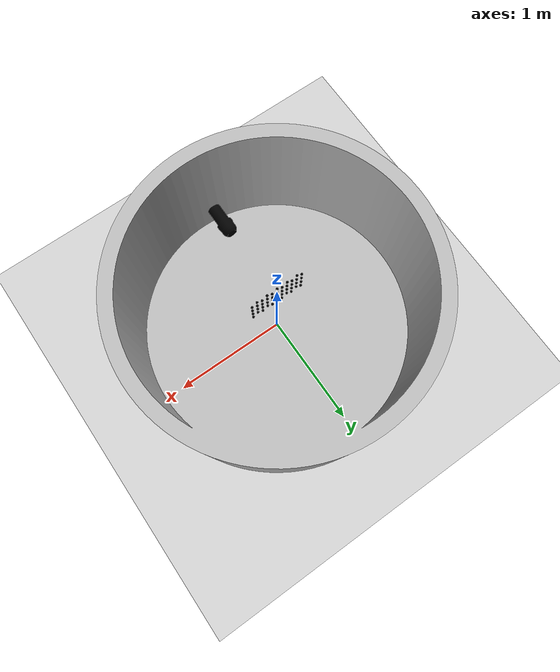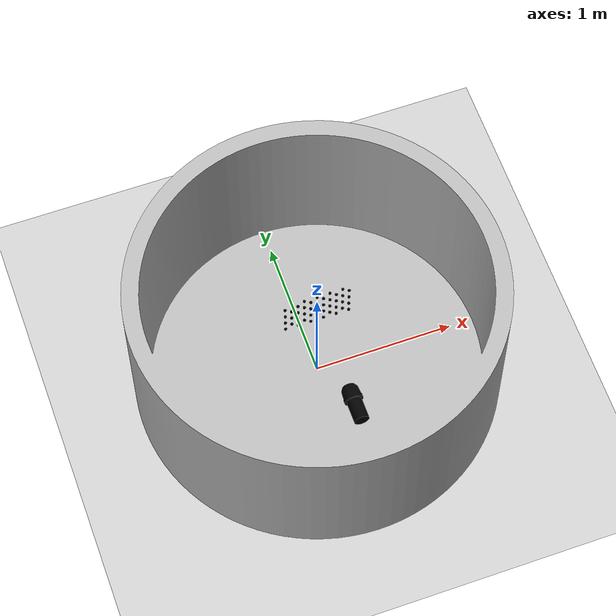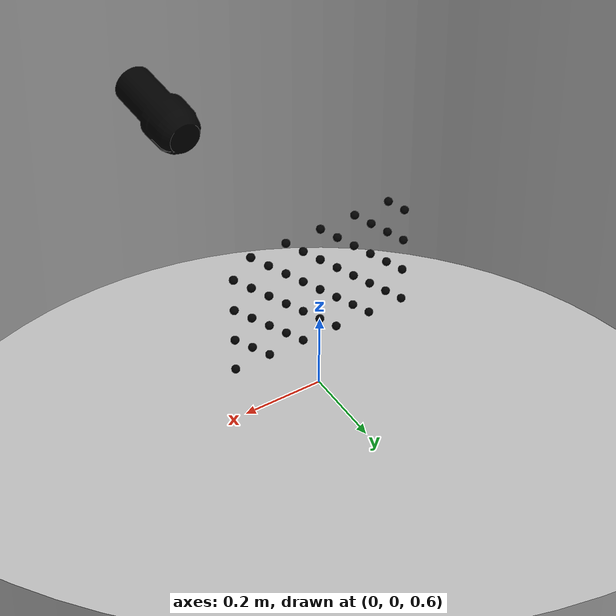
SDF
<?xml version="1.0" ?>
<sdf version="1.6">
  <world name="default">
    <include>
      <uri>model://ground_plane</uri>
    </include>
    <include>
      <uri>model://sun</uri>
    </include>

    <gui>
      <camera name='user_camera'>
        <pose>2.52 -2.65 3.73 0 0.66 2.42</pose>
      </camera>
    </gui>

    <!-- basement tank -->
    <include>
      <uri>model://cylinder_sonar_tank</uri>
      <name>cylinder_sonar_tank</name>
      <pose>0 0 0 0 0 0</pose>
      <static>true</static>
    </include>

    <!-- vertical cylinder target -->

    <!-- horizontal cylinder target -->

    <!-- simple plate target -->
    <!-- Assume that the plate is at the same z position as the sonar -->
    <!-- sonar is at 12" below water surface -->

    <!-- plate model (designed using SolidWorks) -->
    <!-- Plate size : 600 mm x 450 mm, origin at left bottom corner-->
    <!-- Assume that the plate is at the same z position as the sonar -->
    <!-- sonar is at 12" below water surface where the water is ~48" deep -->

    <include>
      <uri>model://plate_holes</uri>
      <name>plate_model</name>
      <pose>0 0 0.9144 0 0 0</pose>
      <static>true</static>
    </include>

    <!-- Oculus m1200d -->
    <!-- Sonar placed at 12" below water surface, 20" from the sonar tank wall -->
    <!-- zero roll and pitch, the water is ~48" deep -->
    <include>
      <uri>model://oculus_m1200d_nps_multibeam_HF</uri>
      <name>oculus_m1200d</name>
      <pose>0 -0.6604 0.9144 0 0 1.5709</pose>
      <static>true</static>
    </include>

  </world>
</sdf>

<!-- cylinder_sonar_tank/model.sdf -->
<sdf version="1.6">
  <model name="cylinder_sonar_tank">
    <link name="link">
      <inertial>
        <pose>0 0 0 0 0 0</pose>
        <mass>1000.0</mass>
        <inertia>
          <ixx>0.083</ixx>
          <ixy>0.0</ixy>
          <ixz>0.0</ixz>
          <iyy>0.083</iyy>
          <iyz>0.0</iyz>
          <izz>0.083</izz>
        </inertia>
      </inertial>
      <collision name="collision">
        <geometry>
          <mesh>
            <uri>model://cylinder_sonar_tank/meshes/cylinder_sonar_tank.stl</uri>
            <!-- inner diameter of 92". The water is ~48" deep -->
            <scale>1.1684 1.1684 0.6096</scale>
          </mesh>
        </geometry>
      </collision>
      <visual name="visual">
        <geometry>
          <mesh>
            <uri>model://cylinder_sonar_tank/meshes/COLLISION_cylinder_sonar_tank.stl</uri>
            <!-- inner diameter of 92". The water is ~48" deep -->
            <scale>1.1684 1.1684 0.6096</scale>
          </mesh>
        </geometry>
      </visual>
    </link>
  </model>
</sdf>

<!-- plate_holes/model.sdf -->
<sdf version="1.6">
  <model name="plate_holes">

    <link name="A1">
      <pose>-0.18 0 0.1575 0 0 0</pose>
      <collision name="collision"><geometry><sphere><radius>0.01</radius></sphere></geometry></collision>
      <visual name="visual"><geometry><sphere><radius>0.01</radius></sphere></geometry>  <material><ambient>0 0 0 1</ambient><diffuse>0 0 0 1</diffuse><specular>0 0 0 0</specular><emissive>1.0 0.2 0.2 1</emissive></material>
      </visual>
    </link>

    <link name="A2">
      <pose>-0.09 0 0.1575 0 0 0</pose>
      <collision name="collision"><geometry><sphere><radius>0.01</radius></sphere></geometry></collision>
      <visual name="visual"><geometry><sphere><radius>0.01</radius></sphere></geometry>  <material><ambient>0 0 0 1</ambient><diffuse>0 0 0 1</diffuse><specular>0 0 0 0</specular><emissive>1.0 0.2 0.2 1</emissive></material>
      </visual>
    </link>

    <link name="A3">
      <pose>0 0 0.1575 0 0 0</pose>
      <collision name="collision"><geometry><sphere><radius>0.01</radius></sphere></geometry></collision>
      <visual name="visual"><geometry><sphere><radius>0.01</radius></sphere></geometry>  <material><ambient>0 0 0 1</ambient><diffuse>0 0 0 1</diffuse><specular>0 0 0 0</specular><emissive>1.0 0.2 0.2 1</emissive></material>
      </visual>
    </link>

    <link name="A4">
      <pose>0.09 0 0.1575 0 0 0</pose>
      <collision name="collision"><geometry><sphere><radius>0.01</radius></sphere></geometry></collision>
      <visual name="visual"><geometry><sphere><radius>0.01</radius></sphere></geometry>  <material><ambient>0 0 0 1</ambient><diffuse>0 0 0 1</diffuse><specular>0 0 0 0</specular><emissive>1.0 0.2 0.2 1</emissive></material>
      </visual>
    </link>

    <link name="A5">
      <pose>0.18 0 0.1575 0 0 0</pose>
      <collision name="collision"><geometry><sphere><radius>0.01</radius></sphere></geometry></collision>
      <visual name="visual"><geometry><sphere><radius>0.01</radius></sphere></geometry>  <material><ambient>0 0 0 1</ambient><diffuse>0 0 0 1</diffuse><specular>0 0 0 0</specular><emissive>1.0 0.2 0.2 1</emissive></material>
      </visual>
    </link>

    <link name="B1">
      <pose>-0.225 0 0.1125 0 0 0</pose>
      <collision name="collision"><geometry><sphere><radius>0.01</radius></sphere></geometry></collision>
      <visual name="visual"><geometry><sphere><radius>0.01</radius></sphere></geometry>  <material><ambient>0 0 0 1</ambient><diffuse>0 0 0 1</diffuse><specular>0 0 0 0</specular><emissive>1.0 0.2 0.2 1</emissive></material>
      </visual>
    </link>

    <link name="B2">
      <pose>-0.135 0 0.1125 0 0 0</pose>
      <collision name="collision"><geometry><sphere><radius>0.01</radius></sphere></geometry></collision>
      <visual name="visual"><geometry><sphere><radius>0.01</radius></sphere></geometry>  <material><ambient>0 0 0 1</ambient><diffuse>0 0 0 1</diffuse><specular>0 0 0 0</specular><emissive>1.0 0.2 0.2 1</emissive></material>
      </visual>
    </link>

    <link name="B3">
      <pose>-0.045 0 0.1125 0 0 0</pose>
      <collision name="collision"><geometry><sphere><radius>0.01</radius></sphere></geometry></collision>
      <visual name="visual"><geometry><sphere><radius>0.01</radius></sphere></geometry>  <material><ambient>0 0 0 1</ambient><diffuse>0 0 0 1</diffuse><specular>0 0 0 0</specular><emissive>1.0 0.2 0.2 1</emissive></material>
      </visual>
    </link>

    <link name="B4">
      <pose>0.045 0 0.1125 0 0 0</pose>
      <collision name="collision"><geometry><sphere><radius>0.01</radius></sphere></geometry></collision>
      <visual name="visual"><geometry><sphere><radius>0.01</radius></sphere></geometry>  <material><ambient>0 0 0 1</ambient><diffuse>0 0 0 1</diffuse><specular>0 0 0 0</specular><emissive>1.0 0.2 0.2 1</emissive></material>
      </visual>
    </link>

    <link name="B5">
      <pose>0.135 0 0.1125 0 0 0</pose>
      <collision name="collision"><geometry><sphere><radius>0.01</radius></sphere></geometry></collision>
      <visual name="visual"><geometry><sphere><radius>0.01</radius></sphere></geometry>  <material><ambient>0 0 0 1</ambient><diffuse>0 0 0 1</diffuse><specular>0 0 0 0</specular><emissive>1.0 0.2 0.2 1</emissive></material>
      </visual>
    </link>

    <link name="B6">
      <pose>0.225 0 0.1125 0 0 0</pose>
      <collision name="collision"><geometry><sphere><radius>0.01</radius></sphere></geometry></collision>
      <visual name="visual"><geometry><sphere><radius>0.01</radius></sphere></geometry>  <material><ambient>0 0 0 1</ambient><diffuse>0 0 0 1</diffuse><specular>0 0 0 0</specular><emissive>1.0 0.2 0.2 1</emissive></material>
      </visual>
    </link>

    <link name="C1">
      <pose>-0.18 0 0.0675 0 0 0</pose>
      <collision name="collision"><geometry><sphere><radius>0.01</radius></sphere></geometry></collision>
      <visual name="visual"><geometry><sphere><radius>0.01</radius></sphere></geometry>  <material><ambient>0 0 0 1</ambient><diffuse>0 0 0 1</diffuse><specular>0 0 0 0</specular><emissive>1.0 0.2 0.2 1</emissive></material>
      </visual>
    </link>

    <link name="C2">
      <pose>-0.09 0 0.0675 0 0 0</pose>
      <collision name="collision"><geometry><sphere><radius>0.01</radius></sphere></geometry></collision>
      <visual name="visual"><geometry><sphere><radius>0.01</radius></sphere></geometry>  <material><ambient>0 0 0 1</ambient><diffuse>0 0 0 1</diffuse><specular>0 0 0 0</specular><emissive>1.0 0.2 0.2 1</emissive></material>
      </visual>
    </link>

    <link name="C3">
      <pose>0 0 0.0675 0 0 0</pose>
      <collision name="collision"><geometry><sphere><radius>0.01</radius></sphere></geometry></collision>
      <visual name="visual"><geometry><sphere><radius>0.01</radius></sphere></geometry>  <material><ambient>0 0 0 1</ambient><diffuse>0 0 0 1</diffuse><specular>0 0 0 0</specular><emissive>1.0 0.2 0.2 1</emissive></material>
      </visual>
    </link>

    <link name="C4">
      <pose>0.09 0 0.0675 0 0 0</pose>
      <collision name="collision"><geometry><sphere><radius>0.01</radius></sphere></geometry></collision>
      <visual name="visual"><geometry><sphere><radius>0.01</radius></sphere></geometry>  <material><ambient>0 0 0 1</ambient><diffuse>0 0 0 1</diffuse><specular>0 0 0 0</specular><emissive>1.0 0.2 0.2 1</emissive></material>
      </visual>
    </link>

    <link name="C5">
      <pose>0.18 0 0.0675 0 0 0</pose>
      <collision name="collision"><geometry><sphere><radius>0.01</radius></sphere></geometry></collision>
      <visual name="visual"><geometry><sphere><radius>0.01</radius></sphere></geometry>  <material><ambient>0 0 0 1</ambient><diffuse>0 0 0 1</diffuse><specular>0 0 0 0</specular><emissive>1.0 0.2 0.2 1</emissive></material>
      </visual>
    </link>

    <link name="D1">
      <pose>-0.225 0 0.0225 0 0 0</pose>
      <collision name="collision"><geometry><sphere><radius>0.01</radius></sphere></geometry></collision>
      <visual name="visual"><geometry><sphere><radius>0.01</radius></sphere></geometry>  <material><ambient>0 0 0 1</ambient><diffuse>0 0 0 1</diffuse><specular>0 0 0 0</specular><emissive>1.0 0.2 0.2 1</emissive></material>
      </visual>
    </link>

    <link name="D2">
      <pose>-0.135 0 0.0225 0 0 0</pose>
      <collision name="collision"><geometry><sphere><radius>0.01</radius></sphere></geometry></collision>
      <visual name="visual"><geometry><sphere><radius>0.01</radius></sphere></geometry>  <material><ambient>0 0 0 1</ambient><diffuse>0 0 0 1</diffuse><specular>0 0 0 0</specular><emissive>1.0 0.2 0.2 1</emissive></material>
      </visual>
    </link>

    <link name="D3">
      <pose>-0.045 0 0.0225 0 0 0</pose>
      <collision name="collision"><geometry><sphere><radius>0.01</radius></sphere></geometry></collision>
      <visual name="visual"><geometry><sphere><radius>0.01</radius></sphere></geometry>  <material><ambient>0 0 0 1</ambient><diffuse>0 0 0 1</diffuse><specular>0 0 0 0</specular><emissive>1.0 0.2 0.2 1</emissive></material>
      </visual>
    </link>

    <link name="D4">
      <pose>0.045 0 0.0225 0 0 0</pose>
      <collision name="collision"><geometry><sphere><radius>0.01</radius></sphere></geometry></collision>
      <visual name="visual"><geometry><sphere><radius>0.01</radius></sphere></geometry>  <material><ambient>0 0 0 1</ambient><diffuse>0 0 0 1</diffuse><specular>0 0 0 0</specular><emissive>1.0 0.2 0.2 1</emissive></material>
      </visual>
    </link>

    <link name="D5">
      <pose>0.135 0 0.0225 0 0 0</pose>
      <collision name="collision"><geometry><sphere><radius>0.01</radius></sphere></geometry></collision>
      <visual name="visual"><geometry><sphere><radius>0.01</radius></sphere></geometry>  <material><ambient>0 0 0 1</ambient><diffuse>0 0 0 1</diffuse><specular>0 0 0 0</specular><emissive>1.0 0.2 0.2 1</emissive></material>
      </visual>
    </link>

    <link name="D6">
      <pose>0.225 0 0.0225 0 0 0</pose>
      <collision name="collision"><geometry><sphere><radius>0.01</radius></sphere></geometry></collision>
      <visual name="visual"><geometry><sphere><radius>0.01</radius></sphere></geometry>  <material><ambient>0 0 0 1</ambient><diffuse>0 0 0 1</diffuse><specular>0 0 0 0</specular><emissive>1.0 0.2 0.2 1</emissive></material>
      </visual>
    </link>

    <link name="E1">
      <pose>-0.18 0 -0.0225 0 0 0</pose>
      <collision name="collision"><geometry><sphere><radius>0.01</radius></sphere></geometry></collision>
      <visual name="visual"><geometry><sphere><radius>0.01</radius></sphere></geometry>  <material><ambient>0 0 0 1</ambient><diffuse>0 0 0 1</diffuse><specular>0 0 0 0</specular><emissive>1.0 0.2 0.2 1</emissive></material>
      </visual>
    </link>

    <link name="E2">
      <pose>-0.09 0 -0.0225 0 0 0</pose>
      <collision name="collision"><geometry><sphere><radius>0.01</radius></sphere></geometry></collision>
      <visual name="visual"><geometry><sphere><radius>0.01</radius></sphere></geometry>  <material><ambient>0 0 0 1</ambient><diffuse>0 0 0 1</diffuse><specular>0 0 0 0</specular><emissive>1.0 0.2 0.2 1</emissive></material>
      </visual>
    </link>

    <link name="E3">
      <pose>0 0 -0.0225 0 0 0</pose>
      <collision name="collision"><geometry><sphere><radius>0.01</radius></sphere></geometry></collision>
      <visual name="visual"><geometry><sphere><radius>0.01</radius></sphere></geometry>  <material><ambient>0 0 0 1</ambient><diffuse>0 0 0 1</diffuse><specular>0 0 0 0</specular><emissive>1.0 0.2 0.2 1</emissive></material>
      </visual>
    </link>

    <link name="E4">
      <pose>0.09 0 -0.0225 0 0 0</pose>
      <collision name="collision"><geometry><sphere><radius>0.01</radius></sphere></geometry></collision>
      <visual name="visual"><geometry><sphere><radius>0.01</radius></sphere></geometry>  <material><ambient>0 0 0 1</ambient><diffuse>0 0 0 1</diffuse><specular>0 0 0 0</specular><emissive>1.0 0.2 0.2 1</emissive></material>
      </visual>
    </link>

    <link name="E5">
      <pose>0.18 0 -0.0225 0 0 0</pose>
      <collision name="collision"><geometry><sphere><radius>0.01</radius></sphere></geometry></collision>
      <visual name="visual"><geometry><sphere><radius>0.01</radius></sphere></geometry>  <material><ambient>0 0 0 1</ambient><diffuse>0 0 0 1</diffuse><specular>0 0 0 0</specular><emissive>1.0 0.2 0.2 1</emissive></material>
      </visual>
    </link>

    <link name="F1">
      <pose>-0.225 0 -0.0675 0 0 0</pose>
      <collision name="collision"><geometry><sphere><radius>0.01</radius></sphere></geometry></collision>
      <visual name="visual"><geometry><sphere><radius>0.01</radius></sphere></geometry>  <material><ambient>0 0 0 1</ambient><diffuse>0 0 0 1</diffuse><specular>0 0 0 0</specular><emissive>1.0 0.2 0.2 1</emissive></material>
      </visual>
    </link>

    <link name="F2">
      <pose>-0.135 0 -0.0675 0 0 0</pose>
      <collision name="collision"><geometry><sphere><radius>0.01</radius></sphere></geometry></collision>
      <visual name="visual"><geometry><sphere><radius>0.01</radius></sphere></geometry>  <material><ambient>0 0 0 1</ambient><diffuse>0 0 0 1</diffuse><specular>0 0 0 0</specular><emissive>1.0 0.2 0.2 1</emissive></material>
      </visual>
    </link>

    <link name="F3">
      <pose>-0.045 0 -0.0675 0 0 0</pose>
      <collision name="collision"><geometry><sphere><radius>0.01</radius></sphere></geometry></collision>
      <visual name="visual"><geometry><sphere><radius>0.01</radius></sphere></geometry>  <material><ambient>0 0 0 1</ambient><diffuse>0 0 0 1</diffuse><specular>0 0 0 0</specular><emissive>1.0 0.2 0.2 1</emissive></material>
      </visual>
    </link>

    <link name="F4">
      <pose>0.045 0 -0.0675 0 0 0</pose>
      <collision name="collision"><geometry><sphere><radius>0.01</radius></sphere></geometry></collision>
      <visual name="visual"><geometry><sphere><radius>0.01</radius></sphere></geometry>  <material><ambient>0 0 0 1</ambient><diffuse>0 0 0 1</diffuse><specular>0 0 0 0</specular><emissive>1.0 0.2 0.2 1</emissive></material>
      </visual>
    </link>

    <link name="F5">
      <pose>0.135 0 -0.0675 0 0 0</pose>
      <collision name="collision"><geometry><sphere><radius>0.01</radius></sphere></geometry></collision>
      <visual name="visual"><geometry><sphere><radius>0.01</radius></sphere></geometry>  <material><ambient>0 0 0 1</ambient><diffuse>0 0 0 1</diffuse><specular>0 0 0 0</specular><emissive>1.0 0.2 0.2 1</emissive></material>
      </visual>
    </link>

    <link name="F6">
      <pose>0.225 0 -0.0675 0 0 0</pose>
      <collision name="collision"><geometry><sphere><radius>0.01</radius></sphere></geometry></collision>
      <visual name="visual"><geometry><sphere><radius>0.01</radius></sphere></geometry>  <material><ambient>0 0 0 1</ambient><diffuse>0 0 0 1</diffuse><specular>0 0 0 0</specular><emissive>1.0 0.2 0.2 1</emissive></material>
      </visual>
    </link>

    <link name="G1">
      <pose>-0.18 0 -0.1125 0 0 0</pose>
      <collision name="collision"><geometry><sphere><radius>0.01</radius></sphere></geometry></collision>
      <visual name="visual"><geometry><sphere><radius>0.01</radius></sphere></geometry>  <material><ambient>0 0 0 1</ambient><diffuse>0 0 0 1</diffuse><specular>0 0 0 0</specular><emissive>1.0 0.2 0.2 1</emissive></material>
      </visual>
    </link>

    <link name="G2">
      <pose>-0.09 0 -0.1125 0 0 0</pose>
      <collision name="collision"><geometry><sphere><radius>0.01</radius></sphere></geometry></collision>
      <visual name="visual"><geometry><sphere><radius>0.01</radius></sphere></geometry>  <material><ambient>0 0 0 1</ambient><diffuse>0 0 0 1</diffuse><specular>0 0 0 0</specular><emissive>1.0 0.2 0.2 1</emissive></material>
      </visual>
    </link>

    <link name="G3">
      <pose>0 0 -0.1125 0 0 0</pose>
      <collision name="collision"><geometry><sphere><radius>0.01</radius></sphere></geometry></collision>
      <visual name="visual"><geometry><sphere><radius>0.01</radius></sphere></geometry>  <material><ambient>0 0 0 1</ambient><diffuse>0 0 0 1</diffuse><specular>0 0 0 0</specular><emissive>1.0 0.2 0.2 1</emissive></material>
      </visual>
    </link>

    <link name="G4">
      <pose>0.09 0 -0.1125 0 0 0</pose>
      <collision name="collision"><geometry><sphere><radius>0.01</radius></sphere></geometry></collision>
      <visual name="visual"><geometry><sphere><radius>0.01</radius></sphere></geometry>  <material><ambient>0 0 0 1</ambient><diffuse>0 0 0 1</diffuse><specular>0 0 0 0</specular><emissive>1.0 0.2 0.2 1</emissive></material>
      </visual>
    </link>

    <link name="G5">
      <pose>0.18 0 -0.1125 0 0 0</pose>
      <collision name="collision"><geometry><sphere><radius>0.01</radius></sphere></geometry></collision>
      <visual name="visual"><geometry><sphere><radius>0.01</radius></sphere></geometry>  <material><ambient>0 0 0 1</ambient><diffuse>0 0 0 1</diffuse><specular>0 0 0 0</specular><emissive>1.0 0.2 0.2 1</emissive></material>
      </visual>
    </link>

    <link name="H1">
      <pose>-0.225 0 -0.1575 0 0 0</pose>
      <collision name="collision"><geometry><sphere><radius>0.01</radius></sphere></geometry></collision>
      <visual name="visual"><geometry><sphere><radius>0.01</radius></sphere></geometry>  <material><ambient>0 0 0 1</ambient><diffuse>0 0 0 1</diffuse><specular>0 0 0 0</specular><emissive>1.0 0.2 0.2 1</emissive></material>
      </visual>
    </link>

    <link name="H2">
      <pose>-0.135 0 -0.1575 0 0 0</pose>
      <collision name="collision"><geometry><sphere><radius>0.01</radius></sphere></geometry></collision>
      <visual name="visual"><geometry><sphere><radius>0.01</radius></sphere></geometry>  <material><ambient>0 0 0 1</ambient><diffuse>0 0 0 1</diffuse><specular>0 0 0 0</specular><emissive>1.0 0.2 0.2 1</emissive></material>
      </visual>
    </link>

    <link name="H3">
      <pose>-0.045 0 -0.1575 0 0 0</pose>
      <collision name="collision"><geometry><sphere><radius>0.01</radius></sphere></geometry></collision>
      <visual name="visual"><geometry><sphere><radius>0.01</radius></sphere></geometry>  <material><ambient>0 0 0 1</ambient><diffuse>0 0 0 1</diffuse><specular>0 0 0 0</specular><emissive>1.0 0.2 0.2 1</emissive></material>
      </visual>
    </link>

    <link name="H4">
      <pose>0.045 0 -0.1575 0 0 0</pose>
      <collision name="collision"><geometry><sphere><radius>0.01</radius></sphere></geometry></collision>
      <visual name="visual"><geometry><sphere><radius>0.01</radius></sphere></geometry>  <material><ambient>0 0 0 1</ambient><diffuse>0 0 0 1</diffuse><specular>0 0 0 0</specular><emissive>1.0 0.2 0.2 1</emissive></material>
      </visual>
    </link>

    <link name="H5">
      <pose>0.135 0 -0.1575 0 0 0</pose>
      <collision name="collision"><geometry><sphere><radius>0.01</radius></sphere></geometry></collision>
      <visual name="visual"><geometry><sphere><radius>0.01</radius></sphere></geometry>  <material><ambient>0 0 0 1</ambient><diffuse>0 0 0 1</diffuse><specular>0 0 0 0</specular><emissive>1.0 0.2 0.2 1</emissive></material>
      </visual>
    </link>

    <link name="H6">
      <pose>0.225 0 -0.1575 0 0 0</pose>
      <collision name="collision"><geometry><sphere><radius>0.01</radius></sphere></geometry></collision>
      <visual name="visual"><geometry><sphere><radius>0.01</radius></sphere></geometry>  <material><ambient>0 0 0 1</ambient><diffuse>0 0 0 1</diffuse><specular>0 0 0 0</specular><emissive>1.0 0.2 0.2 1</emissive></material>
      </visual>
    </link>
  </model>
</sdf>

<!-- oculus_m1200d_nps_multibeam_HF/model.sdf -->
<sdf version="1.6">
  <model name="oculus_m1200d">
    <link name="forward_sonar_link">
      <inertial>
        <pose>0 0 0 0 0 0</pose>
        <mass>4.35</mass>
        <inertia>
          <ixx>0.0360</ixx>          <!-- 1/12ml^2 -->
          <ixy>0</ixy>
          <ixz>0</ixz>
          <iyy>0</iyy>
          <iyz>0</iyz>
          <izz>0.0360</izz>
        </inertia>
      </inertial>
      <collision name="collision">
        <geometry>
          <mesh>
            <uri>model://oculus_m1200d_nps_multibeam_HF/meshes/COLLISION-p900.dae</uri>
          </mesh>
        </geometry>
      </collision>
      <visual name="visual">
        <geometry>
          <mesh>
            <uri>model://oculus_m1200d_nps_multibeam_HF/meshes/p900.dae</uri>
          </mesh>
        </geometry>
        <material> <!-- bright material -->
          <ambient>0 0 0 1</ambient>
          <diffuse>0 0 0 1</diffuse>
          <specular>0 0 0 0</specular>
          <emissive>0.2 0.2 1.0 1</emissive>
        </material>
      </visual>

      <sensor name="image_sonar" type="depth">
        <visualize>true</visualize>
        <always_on>true</always_on>
        <update_rate>10</update_rate>
        <camera>
          <!-- 60 degrees for the oculus-m1200d at 2.1MHz mode -->
          <horizontal_fov>1.0471975512</horizontal_fov>
          <image>
            <width>512</width>
            <!-- Set vertical FOV by setting image height -->
            <!-- For 12 deg. (spec sheet), Here it's 24 deg-->
            <height>204</height>
            <format>R8G8B8</format>
          </image>
          <clip>
            <near>0.01</near>            <!-- optimal 2m-60m -->
            <far>10</far>
          </clip>
          <depth_camera>
            <output>depths</output>
          </depth_camera>
          <save enabled="false">
            <path>/tmp/camera</path>
          </save>
        </camera>
        <plugin filename="libnps_multibeam_sonar_ros_plugin.so" name="forward_sonar">
          <!-- Sonar properties -->
          <sonarFreq>2100e3</sonarFreq>
          <bandwidth>265.5e3</bandwidth>
          <soundSpeed>1500</soundSpeed>
          <sourceLevel>150</sourceLevel>
          <maxDistance>2</maxDistance>
          <constantReflectivity>true</constantReflectivity>
          <!-- The CSV databsefile is located at the worlds folder -->
          <reflectivityDatabaseFile>variationalReflectivityDatabase_APL.csv</reflectivityDatabaseFile>
          <sensorGain>1</sensorGain>
          <plotScaler>5</plotScaler>
          <writeLog>true</writeLog>
          <debugFlag>false</debugFlag>
          <writeFrameInterval>5</writeFrameInterval>
          <!-- This name is prepended to ROS topics -->
          <cameraName>oculus_m1200d</cameraName>
          <!-- ROS publication topics -->
          <imageTopicName>image_raw</imageTopicName>
          <cameraInfoTopicName>image_raw/camera_info</cameraInfoTopicName>
          <pointCloudTopicName>point_cloud</pointCloudTopicName>
          <depthImageTopicName>image_depth</depthImageTopicName>
          <depthImageCameraInfoTopicName>image_depth/camera_info</depthImageCameraInfoTopicName>
          <sonarImageRawTopicName>sonar_image_raw</sonarImageRawTopicName>
          <sonarImageTopicName>sonar_image</sonarImageTopicName>
          <frameName>forward_sonar_optical_link</frameName>
        </plugin>
      </sensor>
    </link>

  </model>
</sdf>
